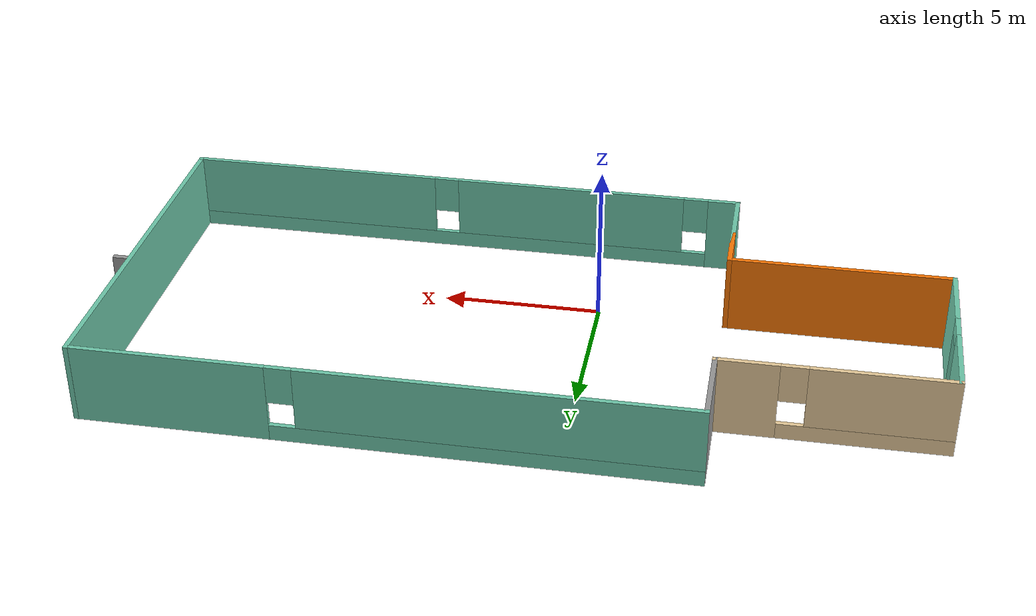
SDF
<?xml version='1.0'?>
<sdf version='1.6'>
  <model name='model'>
    <pose frame=''>1.68 2.415 0 0 -0 0</pose>
    <link name='Door_1'>
      <collision name='Door_1_Collision'>
        <geometry>
          <box>
            <size>0.9 0.17 2</size>
          </box>
        </geometry>
        <pose frame=''>0 0 1 0 -0 0</pose>
      </collision>
      <visual name='Door_1_Visual'>
        <pose frame=''>0 0 1 0 -0 0</pose>
        <geometry>
          <box>
            <size>0.9 0.17 2</size>
          </box>
        </geometry>
        <material>
          <script>
            <uri>file://media/materials/scripts/gazebo.material</uri>
            <name>Gazebo/Grey</name>
          </script>
        </material>
      </visual>
      <pose frame=''>13.069 0.073581 0 0 -0 0</pose>
    </link>
    <link name='Wall_0'>
      <collision name='Wall_0_Collision'>
        <geometry>
          <box>
            <size>2.75 0.15 2.5</size>
          </box>
        </geometry>
        <pose frame=''>0 0 1.25 0 -0 0</pose>
      </collision>
      <visual name='Wall_0_Visual'>
        <pose frame=''>0 0 1.25 0 -0 0</pose>
        <geometry>
          <box>
            <size>2.75 0.15 2.5</size>
          </box>
        </geometry>
        <material>
          <script>
            <uri>file://media/materials/scripts/gazebo.material</uri>
            <name>Gazebo/Grey</name>
          </script>
          <ambient>0.435294 0.796078 0.67451 1</ambient>
        </material>
        <meta>
          <layer>0</layer>
        </meta>
      </visual>
      <pose frame=''>-5.75 -4.625 0 0 0 -1.5708</pose>
    </link>
    <link name='Wall_1'>
      <pose frame=''>3.425 -5.925 0 0 -0 0</pose>
      <visual name='Wall_1_Visual_0'>
        <pose frame=''>-8.72731 0 1.25 0 -0 0</pose>
        <geometry>
          <box>
            <size>1.04538 0.15 2.5</size>
          </box>
        </geometry>
        <material>
          <script>
            <uri>file://media/materials/scripts/gazebo.material</uri>
            <name>Gazebo/Grey</name>
          </script>
          <ambient>0.435294 0.796078 0.67451 1</ambient>
        </material>
        <meta>
          <layer>0</layer>
        </meta>
      </visual>
      <collision name='Wall_1_Collision_0'>
        <geometry>
          <box>
            <size>1.04538 0.15 2.5</size>
          </box>
        </geometry>
        <pose frame=''>-8.72731 0 1.25 0 -0 0</pose>
      </collision>
      <visual name='Wall_1_Visual_1'>
        <pose frame=''>0.52269 0 0.25 0 -0 0</pose>
        <geometry>
          <box>
            <size>17.4546 0.15 0.5</size>
          </box>
        </geometry>
        <material>
          <script>
            <uri>file://media/materials/scripts/gazebo.material</uri>
            <name>Gazebo/Grey</name>
          </script>
          <ambient>0.435294 0.796078 0.67451 1</ambient>
        </material>
        <meta>
          <layer>0</layer>
        </meta>
      </visual>
      <collision name='Wall_1_Collision_1'>
        <geometry>
          <box>
            <size>17.4546 0.15 0.5</size>
          </box>
        </geometry>
        <pose frame=''>0.52269 0 0.25 0 -0 0</pose>
      </collision>
      <visual name='Wall_1_Visual_2'>
        <pose frame=''>-3.61835 0 1.5 0 -0 0</pose>
        <geometry>
          <box>
            <size>7.57254 0.15 2</size>
          </box>
        </geometry>
        <material>
          <script>
            <uri>file://media/materials/scripts/gazebo.material</uri>
            <name>Gazebo/Grey</name>
          </script>
          <ambient>0.435294 0.796078 0.67451 1</ambient>
        </material>
        <meta>
          <layer>0</layer>
        </meta>
      </visual>
      <collision name='Wall_1_Collision_2'>
        <geometry>
          <box>
            <size>7.57254 0.15 2</size>
          </box>
        </geometry>
        <pose frame=''>-3.61835 0 1.5 0 -0 0</pose>
      </collision>
      <visual name='Wall_1_Visual_3'>
        <pose frame=''>5.10896 0 1.5 0 -0 0</pose>
        <geometry>
          <box>
            <size>8.28208 0.15 2</size>
          </box>
        </geometry>
        <material>
          <script>
            <uri>file://media/materials/scripts/gazebo.material</uri>
            <name>Gazebo/Grey</name>
          </script>
          <ambient>0.435294 0.796078 0.67451 1</ambient>
        </material>
        <meta>
          <layer>0</layer>
        </meta>
      </visual>
      <collision name='Wall_1_Collision_3'>
        <geometry>
          <box>
            <size>8.28208 0.15 2</size>
          </box>
        </geometry>
        <pose frame=''>5.10896 0 1.5 0 -0 0</pose>
      </collision>
      <visual name='Wall_1_Visual_4'>
        <pose frame=''>-7.80462 0 1.9 0 -0 0</pose>
        <geometry>
          <box>
            <size>0.8 0.15 1.2</size>
          </box>
        </geometry>
        <material>
          <script>
            <uri>file://media/materials/scripts/gazebo.material</uri>
            <name>Gazebo/Grey</name>
          </script>
          <ambient>0.435294 0.796078 0.67451 1</ambient>
        </material>
        <meta>
          <layer>0</layer>
        </meta>
      </visual>
      <collision name='Wall_1_Collision_4'>
        <geometry>
          <box>
            <size>0.8 0.15 1.2</size>
          </box>
        </geometry>
        <pose frame=''>-7.80462 0 1.9 0 -0 0</pose>
      </collision>
      <visual name='Wall_1_Visual_5'>
        <pose frame=''>0.567924 0 1.9 0 -0 0</pose>
        <geometry>
          <box>
            <size>0.8 0.15 1.2</size>
          </box>
        </geometry>
        <material>
          <script>
            <uri>file://media/materials/scripts/gazebo.material</uri>
            <name>Gazebo/Grey</name>
          </script>
          <ambient>0.435294 0.796078 0.67451 1</ambient>
        </material>
        <meta>
          <layer>0</layer>
        </meta>
      </visual>
      <collision name='Wall_1_Collision_5'>
        <geometry>
          <box>
            <size>0.8 0.15 1.2</size>
          </box>
        </geometry>
        <pose frame=''>0.567924 0 1.9 0 -0 0</pose>
      </collision>
    </link>
    <link name='Wall_2'>
      <collision name='Wall_2_Collision'>
        <geometry>
          <box>
            <size>12 0.15 2.5</size>
          </box>
        </geometry>
        <pose frame=''>0 0 1.25 0 -0 0</pose>
      </collision>
      <visual name='Wall_2_Visual'>
        <pose frame=''>0 0 1.25 0 -0 0</pose>
        <geometry>
          <box>
            <size>12 0.15 2.5</size>
          </box>
        </geometry>
        <material>
          <script>
            <uri>file://media/materials/scripts/gazebo.material</uri>
            <name>Gazebo/Grey</name>
          </script>
          <ambient>0.435294 0.796078 0.67451 1</ambient>
        </material>
        <meta>
          <layer>0</layer>
        </meta>
      </visual>
      <pose frame=''>12.6 0 0 0 -0 1.5708</pose>
    </link>
    <link name='Wall_3'>
      <pose frame=''>3.425 5.925 0 0 -0 3.14159</pose>
      <visual name='Wall_3_Visual_0'>
        <pose frame=''>-6.26986 0 1.25 0 -0 0</pose>
        <geometry>
          <box>
            <size>5.96028 0.15 2.5</size>
          </box>
        </geometry>
        <material>
          <script>
            <uri>file://media/materials/scripts/gazebo.material</uri>
            <name>Gazebo/Grey</name>
          </script>
          <ambient>0.435294 0.796078 0.67451 1</ambient>
        </material>
        <meta>
          <layer>0</layer>
        </meta>
      </visual>
      <collision name='Wall_3_Collision_0'>
        <geometry>
          <box>
            <size>5.96028 0.15 2.5</size>
          </box>
        </geometry>
        <pose frame=''>-6.26986 0 1.25 0 -0 0</pose>
      </collision>
      <visual name='Wall_3_Visual_1'>
        <pose frame=''>2.98014 0 0.25 0 -0 0</pose>
        <geometry>
          <box>
            <size>12.5397 0.15 0.5</size>
          </box>
        </geometry>
        <material>
          <script>
            <uri>file://media/materials/scripts/gazebo.material</uri>
            <name>Gazebo/Grey</name>
          </script>
          <ambient>0.435294 0.796078 0.67451 1</ambient>
        </material>
        <meta>
          <layer>0</layer>
        </meta>
      </visual>
      <collision name='Wall_3_Collision_1'>
        <geometry>
          <box>
            <size>12.5397 0.15 0.5</size>
          </box>
        </geometry>
        <pose frame=''>2.98014 0 0.25 0 -0 0</pose>
      </collision>
      <visual name='Wall_3_Visual_2'>
        <pose frame=''>3.38014 0 1.5 0 -0 0</pose>
        <geometry>
          <box>
            <size>11.7397 0.15 2</size>
          </box>
        </geometry>
        <material>
          <script>
            <uri>file://media/materials/scripts/gazebo.material</uri>
            <name>Gazebo/Grey</name>
          </script>
          <ambient>0.435294 0.796078 0.67451 1</ambient>
        </material>
        <meta>
          <layer>0</layer>
        </meta>
      </visual>
      <collision name='Wall_3_Collision_2'>
        <geometry>
          <box>
            <size>11.7397 0.15 2</size>
          </box>
        </geometry>
        <pose frame=''>3.38014 0 1.5 0 -0 0</pose>
      </collision>
      <visual name='Wall_3_Visual_3'>
        <pose frame=''>-2.88972 0 1.9 0 -0 0</pose>
        <geometry>
          <box>
            <size>0.8 0.15 1.2</size>
          </box>
        </geometry>
        <material>
          <script>
            <uri>file://media/materials/scripts/gazebo.material</uri>
            <name>Gazebo/Grey</name>
          </script>
          <ambient>0.435294 0.796078 0.67451 1</ambient>
        </material>
        <meta>
          <layer>0</layer>
        </meta>
      </visual>
      <collision name='Wall_3_Collision_3'>
        <geometry>
          <box>
            <size>0.8 0.15 1.2</size>
          </box>
        </geometry>
        <pose frame=''>-2.88972 0 1.9 0 -0 0</pose>
      </collision>
    </link>
    <link name='Wall_4'>
      <collision name='Wall_4_Collision'>
        <geometry>
          <box>
            <size>2.75 0.15 2.5</size>
          </box>
        </geometry>
        <pose frame=''>0 0 1.25 0 -0 0</pose>
      </collision>
      <visual name='Wall_4_Visual'>
        <pose frame=''>0 0 1.25 0 -0 0</pose>
        <geometry>
          <box>
            <size>2.75 0.15 2.5</size>
          </box>
        </geometry>
        <material>
          <script>
            <uri>file://media/materials/scripts/gazebo.material</uri>
            <name>Gazebo/Grey</name>
          </script>
          <ambient>1 1 1 1</ambient>
        </material>
        <meta>
          <layer>0</layer>
        </meta>
      </visual>
      <pose frame=''>-5.75 4.625 0 0 0 -1.5708</pose>
    </link>
    <link name='Wall_5'>
      <pose frame=''>-9.175 3.325 0 0 -0 3.14159</pose>
      <visual name='Wall_5_Visual_0'>
        <pose frame=''>-2.53598 0 1.25 0 -0 0</pose>
        <geometry>
          <box>
            <size>1.92803 0.15 2.5</size>
          </box>
        </geometry>
        <material>
          <script>
            <uri>file://media/materials/scripts/gazebo.material</uri>
            <name>Gazebo/Grey</name>
          </script>
          <ambient>0.921569 0.807843 0.615686 1</ambient>
        </material>
        <meta>
          <layer>0</layer>
        </meta>
      </visual>
      <collision name='Wall_5_Collision_0'>
        <geometry>
          <box>
            <size>1.92803 0.15 2.5</size>
          </box>
        </geometry>
        <pose frame=''>-2.53598 0 1.25 0 -0 0</pose>
      </collision>
      <visual name='Wall_5_Visual_1'>
        <pose frame=''>0.964017 0 0.25 0 -0 0</pose>
        <geometry>
          <box>
            <size>5.07197 0.15 0.5</size>
          </box>
        </geometry>
        <material>
          <script>
            <uri>file://media/materials/scripts/gazebo.material</uri>
            <name>Gazebo/Grey</name>
          </script>
          <ambient>0.921569 0.807843 0.615686 1</ambient>
        </material>
        <meta>
          <layer>0</layer>
        </meta>
      </visual>
      <collision name='Wall_5_Collision_1'>
        <geometry>
          <box>
            <size>5.07197 0.15 0.5</size>
          </box>
        </geometry>
        <pose frame=''>0.964017 0 0.25 0 -0 0</pose>
      </collision>
      <visual name='Wall_5_Visual_2'>
        <pose frame=''>1.36402 0 1.5 0 -0 0</pose>
        <geometry>
          <box>
            <size>4.27197 0.15 2</size>
          </box>
        </geometry>
        <material>
          <script>
            <uri>file://media/materials/scripts/gazebo.material</uri>
            <name>Gazebo/Grey</name>
          </script>
          <ambient>0.921569 0.807843 0.615686 1</ambient>
        </material>
        <meta>
          <layer>0</layer>
        </meta>
      </visual>
      <collision name='Wall_5_Collision_2'>
        <geometry>
          <box>
            <size>4.27197 0.15 2</size>
          </box>
        </geometry>
        <pose frame=''>1.36402 0 1.5 0 -0 0</pose>
      </collision>
      <visual name='Wall_5_Visual_3'>
        <pose frame=''>-1.17197 0 1.9 0 -0 0</pose>
        <geometry>
          <box>
            <size>0.8 0.15 1.2</size>
          </box>
        </geometry>
        <material>
          <script>
            <uri>file://media/materials/scripts/gazebo.material</uri>
            <name>Gazebo/Grey</name>
          </script>
          <ambient>0.921569 0.807843 0.615686 1</ambient>
        </material>
        <meta>
          <layer>0</layer>
        </meta>
      </visual>
      <collision name='Wall_5_Collision_3'>
        <geometry>
          <box>
            <size>0.8 0.15 1.2</size>
          </box>
        </geometry>
        <pose frame=''>-1.17197 0 1.9 0 -0 0</pose>
      </collision>
    </link>
    <link name='Wall_6'>
      <pose frame=''>-12.6 0.525 0 0 0 -1.5708</pose>
      <visual name='Wall_6_Visual_0'>
        <pose frame=''>-1.61268 0 1.25 0 -0 0</pose>
        <geometry>
          <box>
            <size>2.52463 0.15 2.5</size>
          </box>
        </geometry>
        <material>
          <script>
            <uri>file://media/materials/scripts/gazebo.material</uri>
            <name>Gazebo/Grey</name>
          </script>
          <ambient>0.435294 0.796078 0.67451 1</ambient>
        </material>
        <meta>
          <layer>0</layer>
        </meta>
      </visual>
      <collision name='Wall_6_Collision_0'>
        <geometry>
          <box>
            <size>2.52463 0.15 2.5</size>
          </box>
        </geometry>
        <pose frame=''>-1.61268 0 1.25 0 -0 0</pose>
      </collision>
      <visual name='Wall_6_Visual_1'>
        <pose frame=''>1.71232 0 1.25 0 -0 0</pose>
        <geometry>
          <box>
            <size>2.32537 0.15 2.5</size>
          </box>
        </geometry>
        <material>
          <script>
            <uri>file://media/materials/scripts/gazebo.material</uri>
            <name>Gazebo/Grey</name>
          </script>
          <ambient>0.435294 0.796078 0.67451 1</ambient>
        </material>
        <meta>
          <layer>0</layer>
        </meta>
      </visual>
      <collision name='Wall_6_Collision_1'>
        <geometry>
          <box>
            <size>2.32537 0.15 2.5</size>
          </box>
        </geometry>
        <pose frame=''>1.71232 0 1.25 0 -0 0</pose>
      </collision>
      <visual name='Wall_6_Visual_2'>
        <pose frame=''>0.099632 0 2.25 0 -0 0</pose>
        <geometry>
          <box>
            <size>0.9 0.15 0.5</size>
          </box>
        </geometry>
        <material>
          <script>
            <uri>file://media/materials/scripts/gazebo.material</uri>
            <name>Gazebo/Grey</name>
          </script>
          <ambient>0.435294 0.796078 0.67451 1</ambient>
        </material>
        <meta>
          <layer>0</layer>
        </meta>
      </visual>
      <collision name='Wall_6_Collision_2'>
        <geometry>
          <box>
            <size>0.9 0.15 0.5</size>
          </box>
        </geometry>
        <pose frame=''>0.099632 0 2.25 0 -0 0</pose>
      </collision>
    </link>
    <link name='Wall_7'>
      <collision name='Wall_7_Collision'>
        <geometry>
          <box>
            <size>7 0.15 2.5</size>
          </box>
        </geometry>
        <pose frame=''>0 0 1.25 0 -0 0</pose>
      </collision>
      <visual name='Wall_7_Visual'>
        <pose frame=''>0 0 1.25 0 -0 0</pose>
        <geometry>
          <box>
            <size>7 0.15 2.5</size>
          </box>
        </geometry>
        <material>
          <script>
            <uri>file://media/materials/scripts/gazebo.material</uri>
            <name>Gazebo/Grey</name>
          </script>
          <ambient>0.996078 0.47451 0.0196078 1</ambient>
        </material>
        <meta>
          <layer>0</layer>
        </meta>
      </visual>
      <pose frame=''>-9.175 -2.275 0 0 -0 0</pose>
    </link>
    <link name='Wall_8'>
      <collision name='Wall_8_Collision'>
        <geometry>
          <box>
            <size>1.75 0.15 2.5</size>
          </box>
        </geometry>
        <pose frame=''>0 0 1.25 0 -0 0</pose>
      </collision>
      <visual name='Wall_8_Visual'>
        <pose frame=''>0 0 1.25 0 -0 0</pose>
        <geometry>
          <box>
            <size>1.75 0.15 2.5</size>
          </box>
        </geometry>
        <material>
          <script>
            <uri>file://media/materials/scripts/gazebo.material</uri>
            <name>Gazebo/Grey</name>
          </script>
          <ambient>0.996078 0.47451 0.0196078 1</ambient>
        </material>
        <meta>
          <layer>0</layer>
        </meta>
      </visual>
      <pose frame=''>-5.75 -3.075 0 0 0 -1.5708</pose>
    </link>
    <static>1</static>
  </model>
</sdf>
